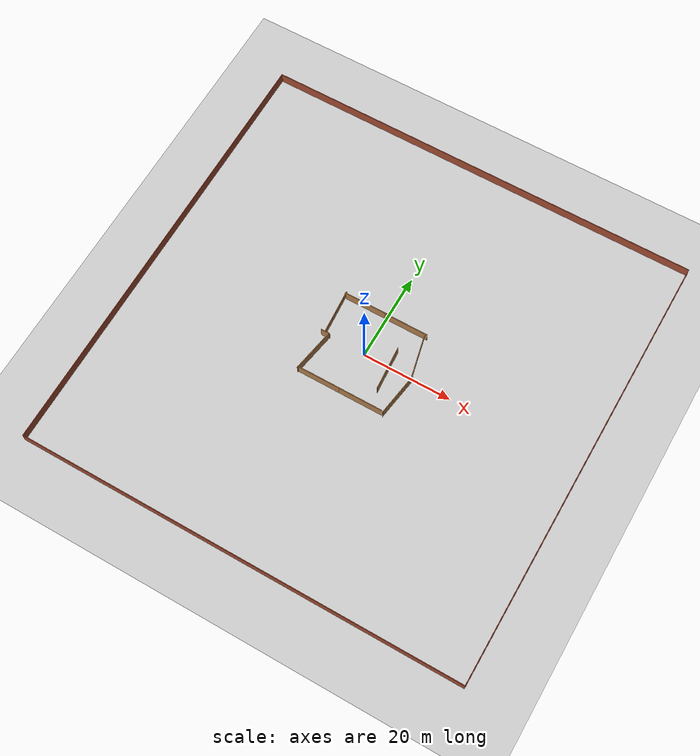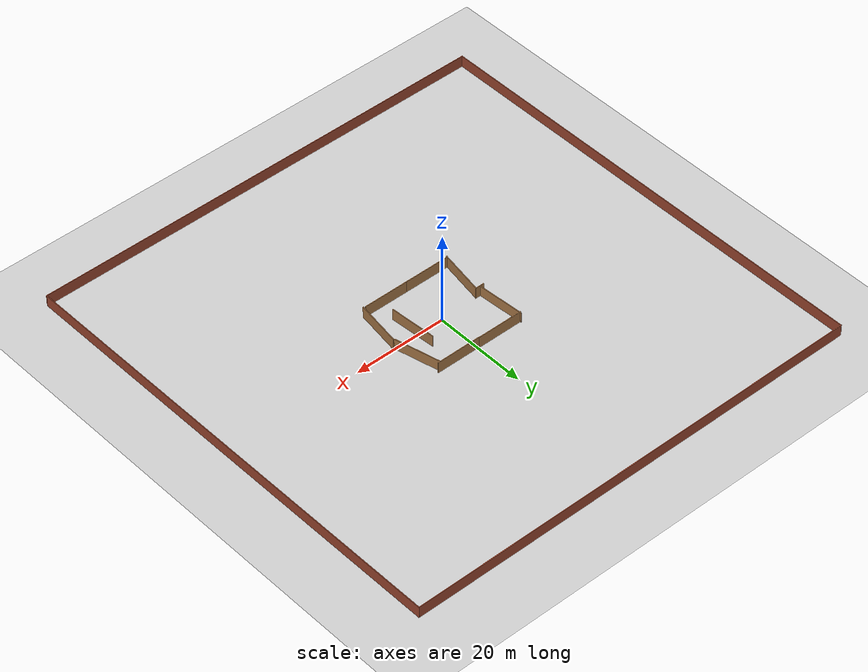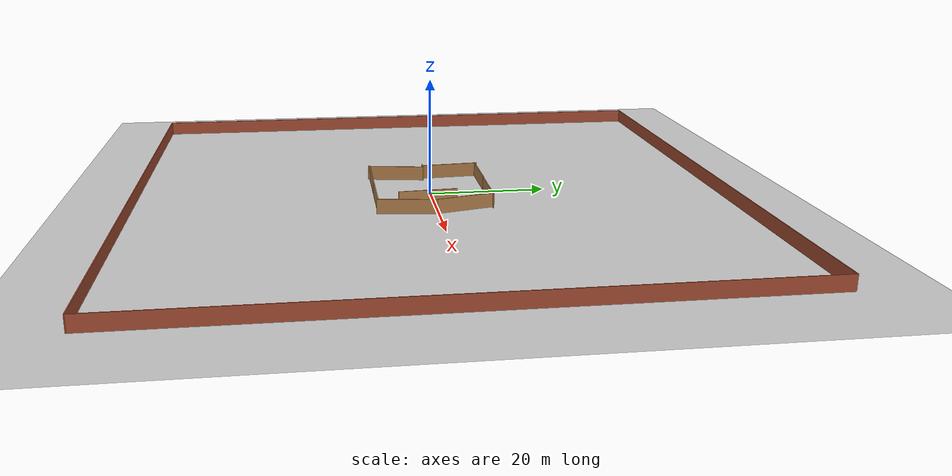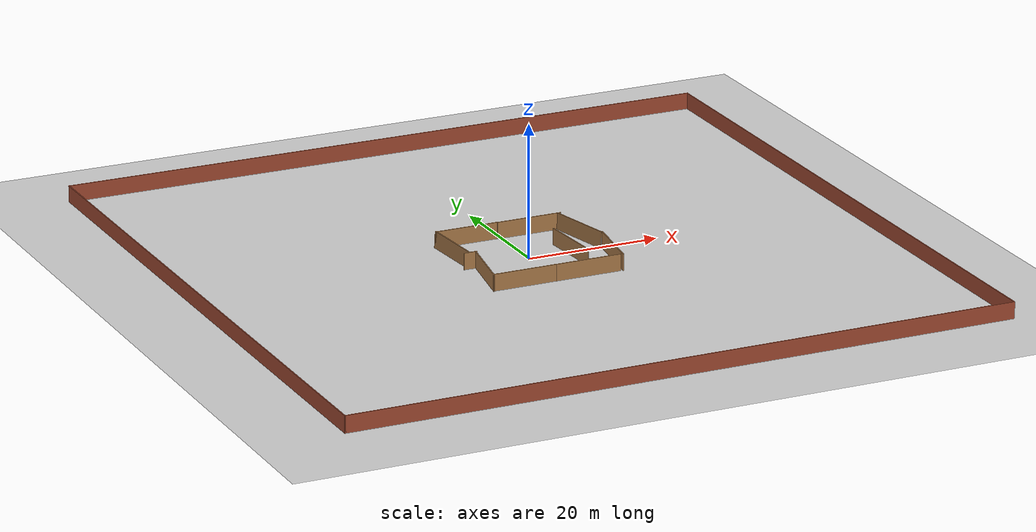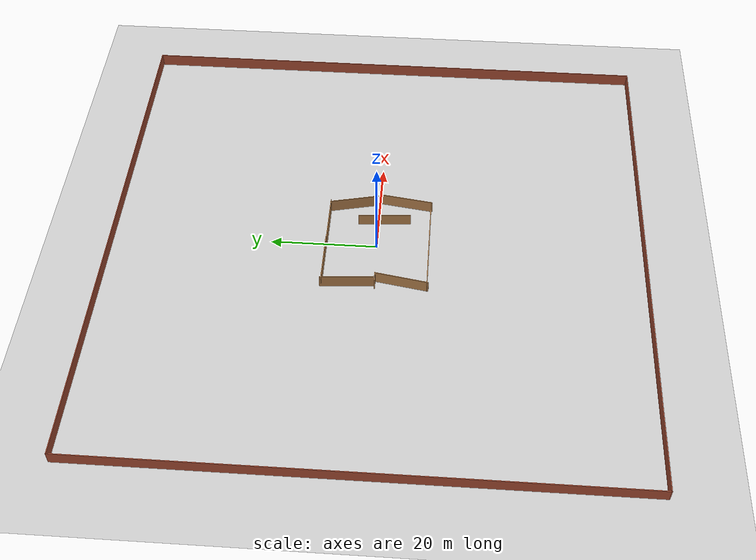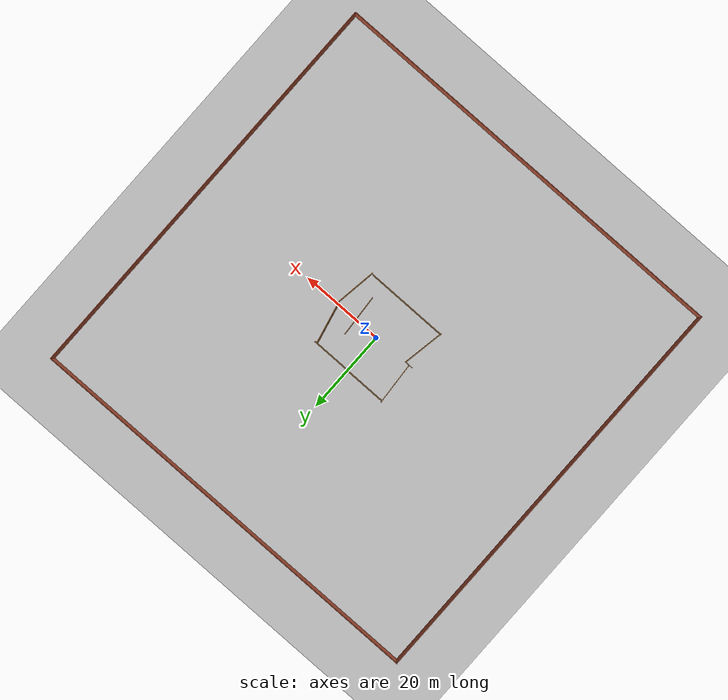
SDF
<sdf version="1.6">
 <world name="default">
  <light name="sun" type="directional">
   <pose>0 0 10 0 -0 0</pose>
   <diffuse>0.8 0.8 0.8 1</diffuse>
   <specular>0.2 0.2 0.2 1</specular>
   <attenuation>
    <range>1000</range>
    <constant>0.9</constant>
    <linear>0.01</linear>
    <quadratic>0.001</quadratic>
   </attenuation>
   <direction>-0.5 0.1 -0.9</direction>
  </light>
  <model name="ground_plane">
   <static>1</static>
   <link name="link">
    <collision name="collision">
     <geometry><plane><normal>0 0 1</normal><size>100 100</size></plane></geometry>
     <surface><friction><ode><mu>100</mu><mu2>50</mu2></ode></friction></surface>
    </collision>
    <visual name="visual">
     <cast_shadows>0</cast_shadows>
     <geometry><plane><normal>0 0 1</normal><size>100 100</size></plane></geometry>
     <material>
      <script><uri>file://media/materials/scripts/gazebo.material</uri><name>Gazebo/Grey</name></script>
     </material>
    </visual>
   </link>
  </model>
  <gravity>0 0 -9.8</gravity>
  <magnetic_field>6e-06 2.3e-05 -4.2e-05</magnetic_field>
  <atmosphere type="adiabatic"/>
  <physics name="default_physics" default="0" type="ode">
   <max_step_size>0.001</max_step_size>
   <real_time_factor>1</real_time_factor>
   <real_time_update_rate>1000</real_time_update_rate>
  </physics>
  <scene><ambient>0.4 0.4 0.4 1</ambient><background>0.7 0.7 0.7 1</background><shadows>1</shadows></scene>
  <spherical_coordinates>
   <surface_model>EARTH_WGS84</surface_model>
   <latitude_deg>0</latitude_deg>
   <longitude_deg>0</longitude_deg>
   <elevation>0</elevation>
   <heading_deg>0</heading_deg>
  </spherical_coordinates>
  <model name="wall-10m-ofoghi">
   <pose>-5.14278 9.50294 0 0 -0 0</pose>
   <link name="Wall_22">
    <collision name="Wall_22_Collision">
     <geometry><box><size>10 0.15 2.5</size></box></geometry>
     <pose>0 0 1.25 0 -0 0</pose>
    </collision>
    <visual name="Wall_22_Visual">
     <pose>0 0 1.25 0 -0 0</pose>
     <geometry><box><size>10 0.15 2.5</size></box></geometry>
     <material>
      <script><uri>file://media/materials/scripts/gazebo.material</uri><name>Gazebo/Wood</name></script>
      <ambient>1 1 1 1</ambient>
     </material>
    </visual>
   </link>
   <static>1</static>
  </model>
  <model name="wall-10m-ofoghi_clone">
   <pose>4.47605 9.41681 0 0 -0 0</pose>
   <link name="Wall_22">
    <collision name="Wall_22_Collision">
     <geometry><box><size>10 0.15 2.5</size></box></geometry>
     <pose>0 0 1.25 0 -0 0</pose>
    </collision>
    <visual name="Wall_22_Visual">
     <pose>0 0 1.25 0 -0 0</pose>
     <geometry><box><size>10 0.15 2.5</size></box></geometry>
     <material>
      <script><uri>file://media/materials/scripts/gazebo.material</uri><name>Gazebo/Wood</name></script>
      <ambient>1 1 1 1</ambient>
     </material>
    </visual>
   </link>
   <static>1</static>
  </model>
  <model name="wall-10m-ofoghi_clone_0">
   <pose>-5.15497 -9.82162 0 0 -0 0</pose>
   <link name="Wall_22">
    <collision name="Wall_22_Collision">
     <geometry><box><size>10 0.15 2.5</size></box></geometry>
     <pose>0 0 1.25 0 -0 0</pose>
    </collision>
    <visual name="Wall_22_Visual">
     <pose>0 0 1.25 0 -0 0</pose>
     <geometry><box><size>10 0.15 2.5</size></box></geometry>
     <material>
      <script><uri>file://media/materials/scripts/gazebo.material</uri><name>Gazebo/Wood</name></script>
      <ambient>1 1 1 1</ambient>
     </material>
    </visual>
   </link>
   <static>1</static>
  </model>
  <model name="wall-10m-ofoghi_clone_1">
   <pose>4.58169 -9.8282 0 0 -0 0</pose>
   <link name="Wall_22">
    <collision name="Wall_22_Collision">
     <geometry><box><size>10 0.15 2.5</size></box></geometry>
     <pose>0 0 1.25 0 -0 0</pose>
    </collision>
    <visual name="Wall_22_Visual">
     <pose>0 0 1.25 0 -0 0</pose>
     <geometry><box><size>10 0.15 2.5</size></box></geometry>
     <material>
      <script><uri>file://media/materials/scripts/gazebo.material</uri><name>Gazebo/Wood</name></script>
      <ambient>1 1 1 1</ambient>
     </material>
    </visual>
   </link>
   <static>1</static>
  </model>
  <model name="wall-10m-ofoghi_clone_2">
   <pose>6.00511 -1.10783 0 0 -0 1.64092</pose>
   <link name="Wall_22">
    <collision name="Wall_22_Collision">
     <geometry><box><size>10 0.15 2.5</size></box></geometry>
     <pose>0 0 1.25 0 -0 0</pose>
    </collision>
    <visual name="Wall_22_Visual">
     <pose>0 0 1.25 0 -0 0</pose>
     <geometry><box><size>10 0.15 2.5</size></box></geometry>
     <material>
      <script><uri>file://media/materials/scripts/gazebo.material</uri><name>Gazebo/Wood</name></script>
      <ambient>1 1 1 1</ambient>
     </material>
    </visual>
   </link>
   <static>1</static>
  </model>
  <model name="wall-10m-ofoghi_clone_2_clone">
   <pose>9.93887 4.56433 0 0.044076 -0.00699 1.79809</pose>
   <link name="Wall_22">
    <collision name="Wall_22_Collision">
     <geometry><box><size>10 0.15 2.5</size></box></geometry>
     <pose>0 0 1.25 0 -0 0</pose>
    </collision>
    <visual name="Wall_22_Visual">
     <pose>0 0 1.25 0 -0 0</pose>
     <geometry><box><size>10 0.15 2.5</size></box></geometry>
     <material>
      <script><uri>file://media/materials/scripts/gazebo.material</uri><name>Gazebo/Wood</name></script>
      <ambient>1 1 1 1</ambient>
     </material>
    </visual>
   </link>
   <static>1</static>
  </model>
  <model name="wall-10m-ofoghi_clone_2_clone_0">
   <pose>10.6228 -5.13978 0 0 -0 1.4233</pose>
   <link name="Wall_22">
    <collision name="Wall_22_Collision">
     <geometry><box><size>10 0.15 2.5</size></box></geometry>
     <pose>0 0 1.25 0 -0 0</pose>
    </collision>
    <visual name="Wall_22_Visual">
     <pose>0 0 1.25 0 -0 0</pose>
     <geometry><box><size>10 0.15 2.5</size></box></geometry>
     <material>
      <script><uri>file://media/materials/scripts/gazebo.material</uri><name>Gazebo/Wood</name></script>
      <ambient>1 1 1 1</ambient>
     </material>
    </visual>
   </link>
   <static>1</static>
  </model>
  <model name="wall-10m-ofoghi_clone_2_clone_1">
   <pose>-9.20792 -5.18413 0 0 -0 1.39852</pose>
   <link name="Wall_22">
    <collision name="Wall_22_Collision">
     <geometry><box><size>10 0.15 2.5</size></box></geometry>
     <pose>0 0 1.25 0 -0 0</pose>
    </collision>
    <visual name="Wall_22_Visual">
     <pose>0 0 1.25 0 -0 0</pose>
     <geometry><box><size>10 0.15 2.5</size></box></geometry>
     <material>
      <script><uri>file://media/materials/scripts/gazebo.material</uri><name>Gazebo/Wood</name></script>
      <ambient>1 1 1 1</ambient>
     </material>
    </visual>
   </link>
   <static>1</static>
  </model>
  <model name="wall-10m-ofoghi_clone_2_clone_2">
   <pose>-9.79071 4.8482 0 0.064417 -0 1.64092</pose>
   <link name="Wall_22">
    <collision name="Wall_22_Collision">
     <geometry><box><size>10 0.15 2.5</size></box></geometry>
     <pose>0 0 1.25 0 -0 0</pose>
    </collision>
    <visual name="Wall_22_Visual">
     <pose>0 0 1.25 0 -0 0</pose>
     <geometry><box><size>10 0.15 2.5</size></box></geometry>
     <material>
      <script><uri>file://media/materials/scripts/gazebo.material</uri><name>Gazebo/Wood</name></script>
      <ambient>1 1 1 1</ambient>
     </material>
    </visual>
   </link>
   <static>1</static>
  </model>
  <model name="tr_maze_lay_1">
   <pose>-9.18298 -0.262138 0 0 -0 0</pose>
   <link name="Wall_21">
    <collision name="Wall_21_Collision">
     <geometry><box><size>2 0.15 2.5</size></box></geometry>
     <pose>0 0 1.25 0 -0 0</pose>
    </collision>
    <visual name="Wall_21_Visual">
     <pose>0 0 1.25 0 -0 0</pose>
     <geometry><box><size>2 0.15 2.5</size></box></geometry>
     <material>
      <script><uri>file://media/materials/scripts/gazebo.material</uri><name>Gazebo/Wood</name></script>
      <ambient>1 1 1 1</ambient>
     </material>
    </visual>
    <pose>0 0 0 0 -0 3.14159</pose>
   </link>
   <static>1</static>
  </model>
  <model name="outer_wall_rect">
   <link name="Wall_0">
    <collision name="Wall_0_Collision">
     <geometry><box><size>100.15 0.15 2.5</size></box></geometry>
     <pose>0 0 1.25 0 -0 0</pose>
    </collision>
    <visual name="Wall_0_Visual">
     <pose>0 0 1.25 0 -0 0</pose>
     <geometry><box><size>100.15 0.15 2.5</size></box></geometry>
     <material>
      <script><uri>file://media/materials/scripts/gazebo.material</uri><name>Gazebo/Bricks</name></script>
      <ambient>1 1 1 1</ambient>
     </material>
     <meta><layer>0</layer></meta>
    </visual>
    <pose>0 50 0 0 -0 0</pose>
   </link>
   <link name="Wall_1">
    <collision name="Wall_1_Collision">
     <geometry><box><size>100.15 0.15 2.5</size></box></geometry>
     <pose>0 0 1.25 0 -0 0</pose>
    </collision>
    <visual name="Wall_1_Visual">
     <pose>0 0 1.25 0 -0 0</pose>
     <geometry><box><size>100.15 0.15 2.5</size></box></geometry>
     <material>
      <script><uri>file://media/materials/scripts/gazebo.material</uri><name>Gazebo/Bricks</name></script>
      <ambient>1 1 1 1</ambient>
     </material>
     <meta><layer>0</layer></meta>
    </visual>
    <pose>50 0 0 0 -0 -1.5708</pose>
   </link>
   <link name="Wall_2">
    <collision name="Wall_2_Collision">
     <geometry><box><size>100.15 0.15 2.5</size></box></geometry>
     <pose>0 0 1.25 0 -0 0</pose>
    </collision>
    <visual name="Wall_2_Visual">
     <pose>0 0 1.25 0 -0 0</pose>
     <geometry><box><size>100.15 0.15 2.5</size></box></geometry>
     <material>
      <script><uri>file://media/materials/scripts/gazebo.material</uri><name>Gazebo/Bricks</name></script>
      <ambient>1 1 1 1</ambient>
     </material>
     <meta><layer>0</layer></meta>
    </visual>
    <pose>0 -50 0 0 -0 3.14159</pose>
   </link>
   <link name="Wall_3">
    <collision name="Wall_3_Collision">
     <geometry><box><size>100.15 0.15 2.5</size></box></geometry>
     <pose>0 0 1.25 0 -0 0</pose>
    </collision>
    <visual name="Wall_3_Visual">
     <pose>0 0 1.25 0 -0 0</pose>
     <geometry><box><size>100.15 0.15 2.5</size></box></geometry>
     <material>
      <script><uri>file://media/materials/scripts/gazebo.material</uri><name>Gazebo/Bricks</name></script>
      <ambient>1 1 1 1</ambient>
     </material>
     <meta><layer>0</layer></meta>
    </visual>
    <pose>-50 0 0 0 -0 1.5708</pose>
   </link>
   <static>1</static>
  </model>
 </world>
</sdf>
